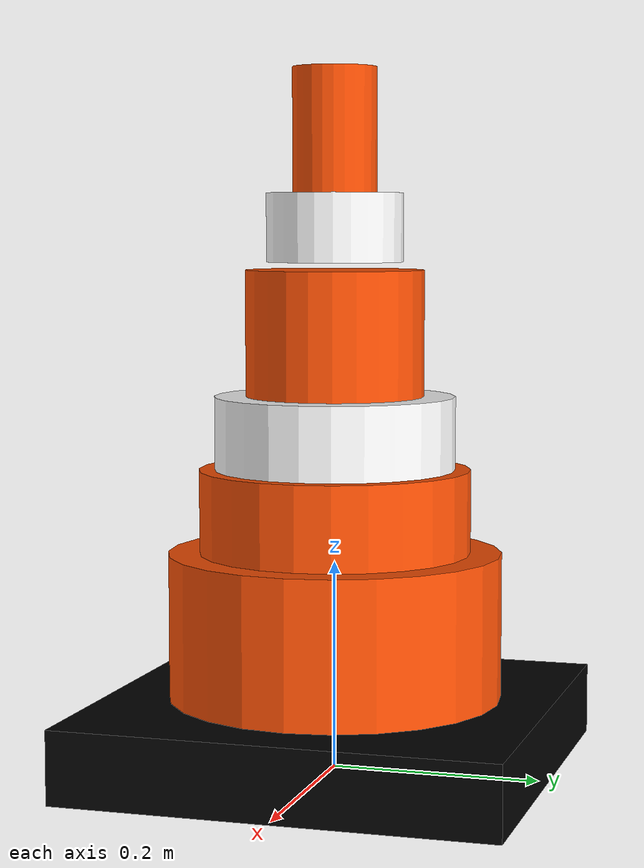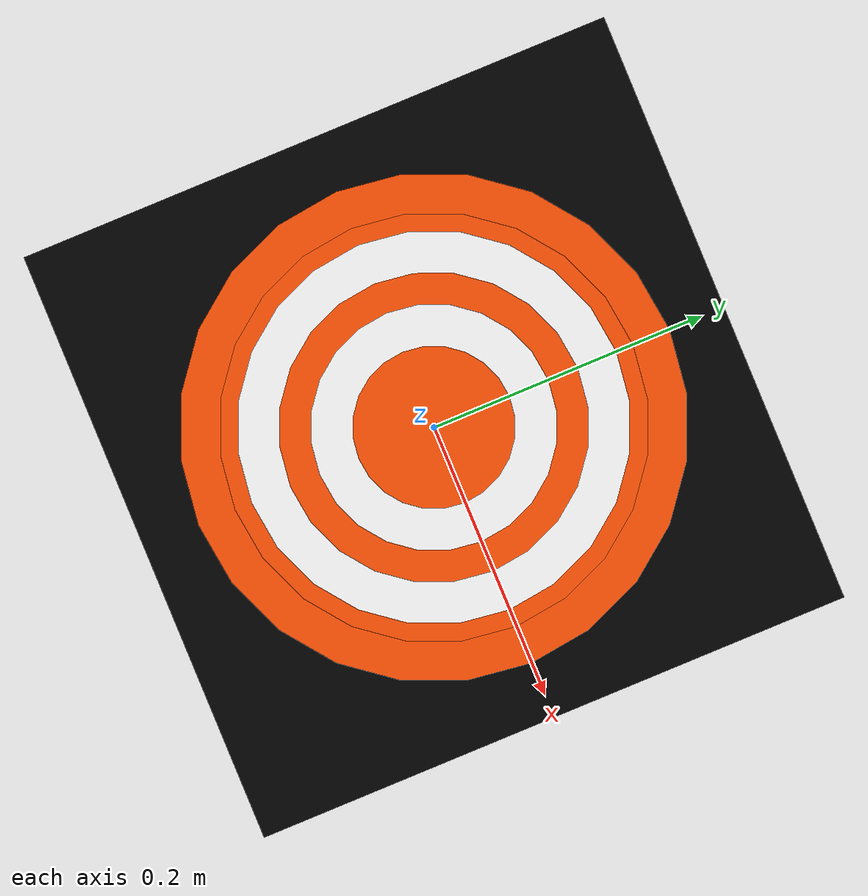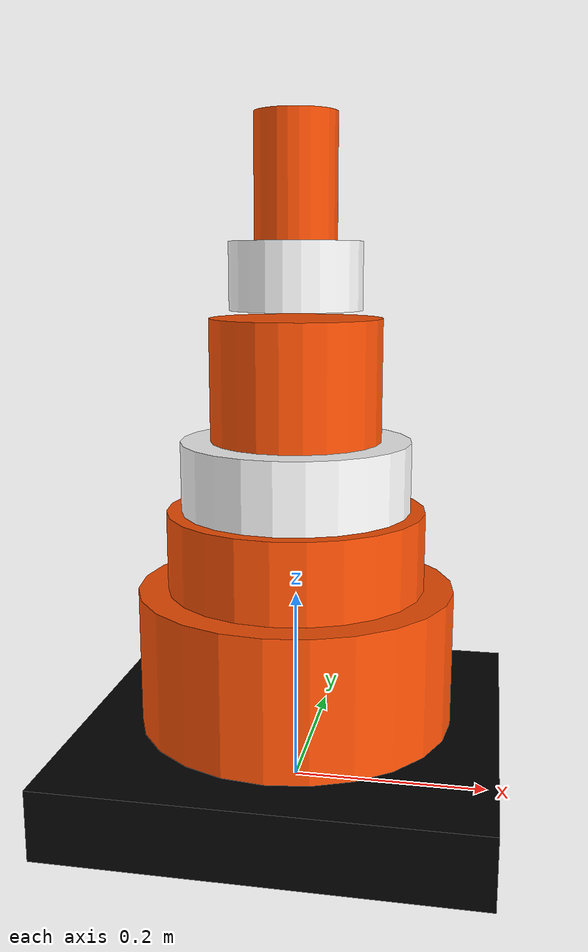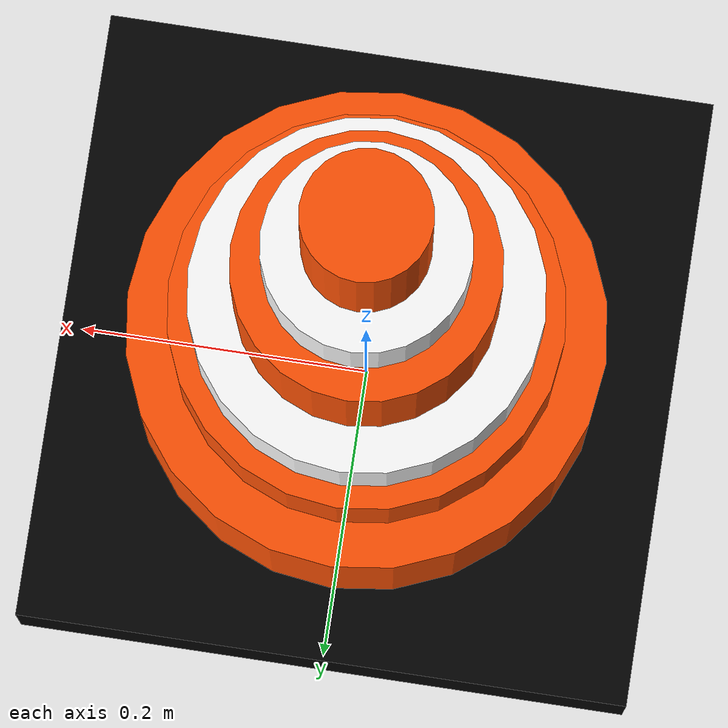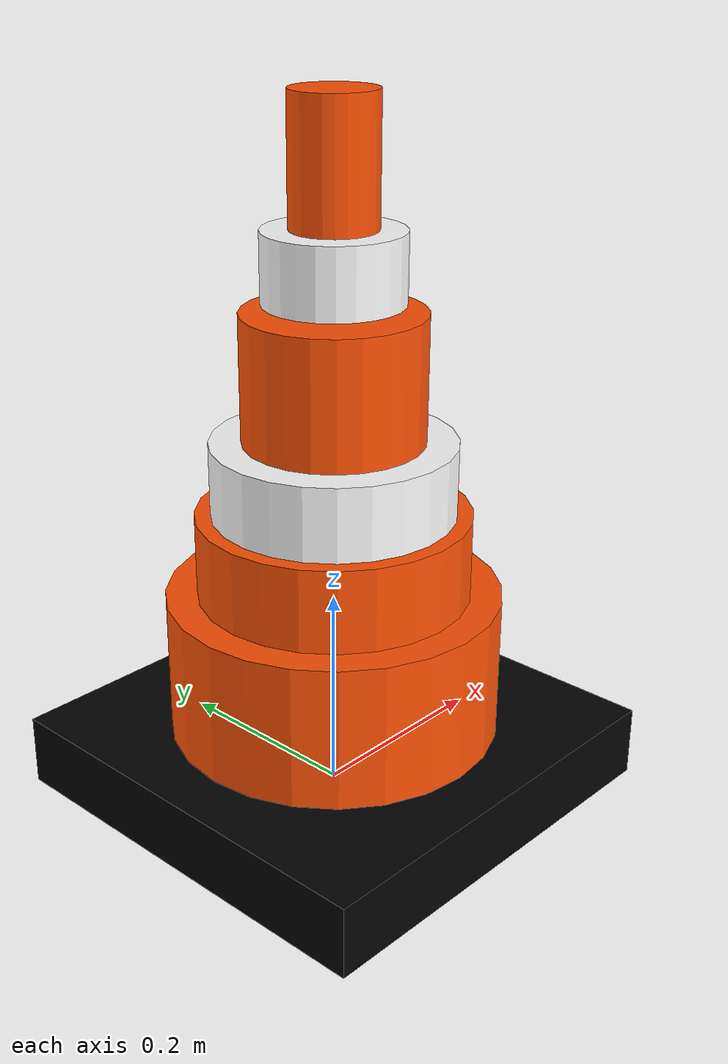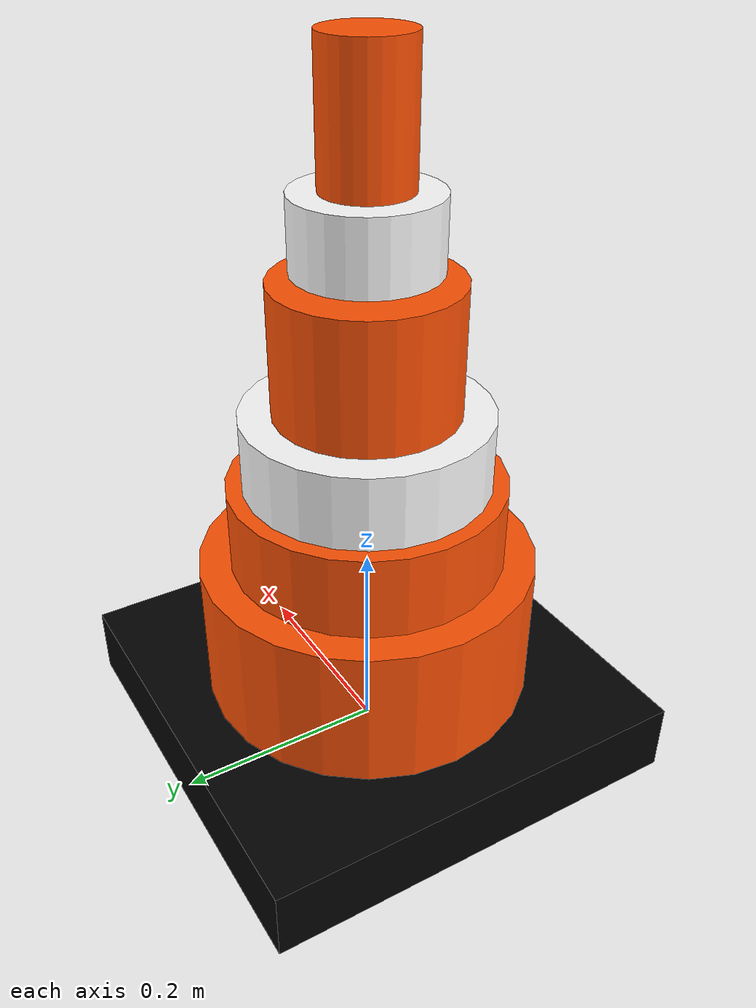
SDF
<?xml version="1.0"?>
<sdf version="1.6">
  <model name="construction_cone">
    <static>true</static>
    <link name="cone">
      <collision name="base_collision">
        <pose>0 0 0.04 0 0 0</pose>
        <geometry><cylinder><radius>0.18</radius><length>0.08</length></cylinder></geometry>
      </collision>
      <collision name="body_collision">
        <pose>0 0 0.32 0 0 0</pose>
        <geometry><cylinder><radius>0.12</radius><length>0.55</length></cylinder></geometry>
      </collision>

      <visual name="black_base">
        <pose>0 0 0.035 0 0 0</pose>
        <geometry><box><size>0.42 0.42 0.07</size></box></geometry>
        <material><ambient>0.01 0.01 0.01 1</ambient><diffuse>0.01 0.01 0.01 1</diffuse></material>
      </visual>
      <visual name="orange_lower">
        <pose>0 0 0.14 0 0 0</pose>
        <geometry><cylinder><radius>0.16</radius><length>0.14</length></cylinder></geometry>
        <material><ambient>1.0 0.32 0.02 1</ambient><diffuse>1.0 0.32 0.02 1</diffuse></material>
      </visual>
      <visual name="orange_lower_taper">
        <pose>0 0 0.24 0 0 0</pose>
        <geometry><cylinder><radius>0.13</radius><length>0.10</length></cylinder></geometry>
        <material><ambient>1.0 0.32 0.02 1</ambient><diffuse>1.0 0.32 0.02 1</diffuse></material>
      </visual>
      <visual name="white_band_lower">
        <pose>0 0 0.32 0 0 0</pose>
        <geometry><cylinder><radius>0.115</radius><length>0.08</length></cylinder></geometry>
        <material><ambient>1 1 1 1</ambient><diffuse>1 1 1 1</diffuse></material>
      </visual>
      <visual name="orange_mid">
        <pose>0 0 0.42 0 0 0</pose>
        <geometry><cylinder><radius>0.085</radius><length>0.12</length></cylinder></geometry>
        <material><ambient>1.0 0.32 0.02 1</ambient><diffuse>1.0 0.32 0.02 1</diffuse></material>
      </visual>
      <visual name="white_band_upper">
        <pose>0 0 0.52 0 0 0</pose>
        <geometry><cylinder><radius>0.065</radius><length>0.065</length></cylinder></geometry>
        <material><ambient>1 1 1 1</ambient><diffuse>1 1 1 1</diffuse></material>
      </visual>
      <visual name="orange_top">
        <pose>0 0 0.61 0 0 0</pose>
        <geometry><cylinder><radius>0.04</radius><length>0.12</length></cylinder></geometry>
        <material><ambient>1.0 0.32 0.02 1</ambient><diffuse>1.0 0.32 0.02 1</diffuse></material>
      </visual>
    </link>
  </model>
</sdf>
